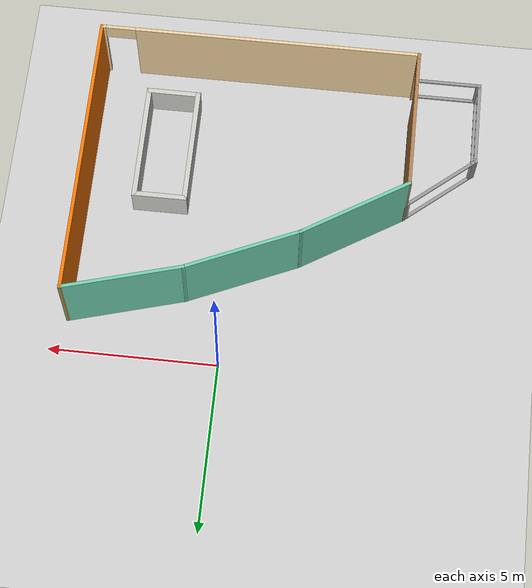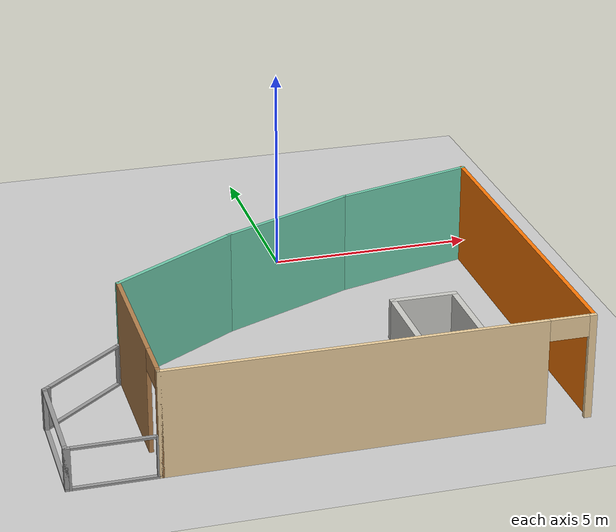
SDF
<sdf version="1.6">
 <world name="default">
  <light name="sun" type="directional">
   <pose>0 0 10 0 -0 0</pose>
   <diffuse>0.8 0.8 0.8 1</diffuse>
   <specular>0.2 0.2 0.2 1</specular>
   <attenuation>
    <range>1000</range>
    <constant>0.9</constant>
    <linear>0.01</linear>
    <quadratic>0.001</quadratic>
   </attenuation>
   <direction>-0.5 0.1 -0.9</direction>
  </light>
  <model name="ground_plane">
   <static>1</static>
   <link name="link">
    <collision name="collision">
     <geometry><plane><normal>0 0 1</normal><size>100 100</size></plane></geometry>
     <surface>
      <contact><collide_bitmask>65535</collide_bitmask></contact>
      <friction><ode><mu>100</mu><mu2>50</mu2></ode></friction>
     </surface>
    </collision>
    <visual name="visual">
     <cast_shadows>0</cast_shadows>
     <geometry><plane><normal>0 0 1</normal><size>100 100</size></plane></geometry>
     <material>
      <script><uri>file://media/materials/scripts/gazebo.material</uri><name>Gazebo/Grey</name></script>
     </material>
    </visual>
   </link>
  </model>
  <gravity>0 0 -9.8</gravity>
  <magnetic_field>6e-06 2.3e-05 -4.2e-05</magnetic_field>
  <atmosphere type="adiabatic"/>
  <physics name="default_physics" default="0" type="ode">
   <max_step_size>0.001</max_step_size>
   <real_time_factor>1</real_time_factor>
   <real_time_update_rate>1000</real_time_update_rate>
  </physics>
  <scene><ambient>0.4 0.4 0.4 1</ambient><background>0.7 0.7 0.7 1</background><shadows>1</shadows></scene>
  <spherical_coordinates>
   <surface_model>EARTH_WGS84</surface_model>
   <latitude_deg>0</latitude_deg>
   <longitude_deg>0</longitude_deg>
   <elevation>0</elevation>
   <heading_deg>0</heading_deg>
  </spherical_coordinates>
  <model name="enso_simplified">
   <pose>-1.23432 -5.23909 0 0 -0 0</pose>
   <link name="Wall_11">
    <collision name="Wall_11_Collision">
     <geometry><box><size>3.65 0.15 1</size></box></geometry>
     <pose>0 0 0.5 0 -0 0</pose>
    </collision>
    <visual name="Wall_11_Visual">
     <pose>0 0 0.5 0 -0 0</pose>
     <geometry><box><size>3.65 0.15 1</size></box></geometry>
     <material>
      <script><uri>file://media/materials/scripts/gazebo.material</uri><name>Gazebo/CeilingTiled</name></script>
      <ambient>1 1 1 1</ambient>
     </material>
     <meta><layer>0</layer></meta>
    </visual>
    <pose>2.76431 -1.31091 0 0 0 -1.5708</pose>
   </link>
   <link name="Wall_12">
    <collision name="Wall_12_Collision">
     <geometry><box><size>1.65 0.15 1</size></box></geometry>
     <pose>0 0 0.5 0 -0 0</pose>
    </collision>
    <visual name="Wall_12_Visual">
     <pose>0 0 0.5 0 -0 0</pose>
     <geometry><box><size>1.65 0.15 1</size></box></geometry>
     <material>
      <script><uri>file://media/materials/scripts/gazebo.material</uri><name>Gazebo/CeilingTiled</name></script>
      <ambient>1 1 1 1</ambient>
     </material>
     <meta><layer>0</layer></meta>
    </visual>
    <pose>3.51431 -3.06091 0 0 -0 0</pose>
   </link>
   <link name="Wall_13">
    <collision name="Wall_13_Collision">
     <geometry><box><size>3.65 0.15 1</size></box></geometry>
     <pose>0 0 0.5 0 -0 0</pose>
    </collision>
    <visual name="Wall_13_Visual">
     <pose>0 0 0.5 0 -0 0</pose>
     <geometry><box><size>3.65 0.15 1</size></box></geometry>
     <material>
      <script><uri>file://media/materials/scripts/gazebo.material</uri><name>Gazebo/CeilingTiled</name></script>
      <ambient>1 1 1 1</ambient>
     </material>
     <meta><layer>0</layer></meta>
    </visual>
    <pose>4.26431 -1.31091 0 0 -0 1.5708</pose>
   </link>
   <link name="Wall_14">
    <collision name="Wall_14_Collision">
     <geometry><box><size>1.65 0.15 1</size></box></geometry>
     <pose>0 0 0.5 0 -0 0</pose>
    </collision>
    <visual name="Wall_14_Visual">
     <pose>0 0 0.5 0 -0 0</pose>
     <geometry><box><size>1.65 0.15 1</size></box></geometry>
     <material>
      <script><uri>file://media/materials/scripts/gazebo.material</uri><name>Gazebo/CeilingTiled</name></script>
      <ambient>1 1 1 1</ambient>
     </material>
     <meta><layer>0</layer></meta>
    </visual>
    <pose>3.51431 0.439094 0 0 -0 3.14159</pose>
   </link>
   <link name="Wall_16">
    <pose>-3.76568 -2.12591 0 0 0 -1.5708</pose>
    <visual name="Wall_16_Visual_0">
     <pose>-0.545 0 1.25 0 -0 0</pose>
     <geometry><box><size>3.28 0.1 2.5</size></box></geometry>
     <material>
      <script><uri>file://media/materials/scripts/gazebo.material</uri><name>Gazebo/Wood</name></script>
      <ambient>1 1 1 1</ambient>
     </material>
     <meta><layer>0</layer></meta>
    </visual>
    <collision name="Wall_16_Collision_0">
     <geometry><box><size>3.28 0.1 2.5</size></box></geometry>
     <pose>-0.545 0 1.25 0 -0 0</pose>
    </collision>
    <visual name="Wall_16_Visual_1">
     <pose>2.09 0 1.25 0 -0 0</pose>
     <geometry><box><size>0.19 0.1 2.5</size></box></geometry>
     <material>
      <script><uri>file://media/materials/scripts/gazebo.material</uri><name>Gazebo/Wood</name></script>
      <ambient>1 1 1 1</ambient>
     </material>
     <meta><layer>0</layer></meta>
    </visual>
    <collision name="Wall_16_Collision_1">
     <geometry><box><size>0.19 0.1 2.5</size></box></geometry>
     <pose>2.09 0 1.25 0 -0 0</pose>
    </collision>
    <visual name="Wall_16_Visual_2">
     <pose>1.545 0 2.25 0 -0 0</pose>
     <geometry><box><size>0.9 0.1 0.5</size></box></geometry>
     <material>
      <script><uri>file://media/materials/scripts/gazebo.material</uri><name>Gazebo/Wood</name></script>
      <ambient>1 1 1 1</ambient>
     </material>
     <meta><layer>0</layer></meta>
    </visual>
    <collision name="Wall_16_Collision_2">
     <geometry><box><size>0.9 0.1 0.5</size></box></geometry>
     <pose>1.545 0 2.25 0 -0 0</pose>
    </collision>
   </link>
   <link name="Wall_2">
    <collision name="Wall_2_Collision">
     <geometry><box><size>3.59445 0.1 2.5</size></box></geometry>
     <pose>0 0 1.25 0 -0 0</pose>
    </collision>
    <visual name="Wall_2_Visual">
     <pose>0 0 1.25 0 -0 0</pose>
     <geometry><box><size>3.59445 0.1 2.5</size></box></geometry>
     <material>
      <script><uri>file://media/materials/scripts/gazebo.material</uri><name>Gazebo/Grey</name></script>
      <ambient>0.435294 0.796078 0.67451 1</ambient>
     </material>
     <meta><layer>0</layer></meta>
    </visual>
    <pose>4.08432 3.76909 0 0 0 -2.86329</pose>
   </link>
   <link name="Wall_3">
    <collision name="Wall_3_Collision">
     <geometry><box><size>3.60498 0.1 2.5</size></box></geometry>
     <pose>0 0 1.25 0 -0 0</pose>
    </collision>
    <visual name="Wall_3_Visual">
     <pose>0 0 1.25 0 -0 0</pose>
     <geometry><box><size>3.60498 0.1 2.5</size></box></geometry>
     <material>
      <script><uri>file://media/materials/scripts/gazebo.material</uri><name>Gazebo/Grey</name></script>
      <ambient>0.435294 0.796078 0.67451 1</ambient>
     </material>
     <meta><layer>0</layer></meta>
    </visual>
    <pose>0.804315 2.57409 0 0 0 -2.72134</pose>
   </link>
   <link name="Wall_4">
    <collision name="Wall_4_Collision">
     <geometry><box><size>3.59906 0.1 2.5</size></box></geometry>
     <pose>0 0 1.25 0 -0 0</pose>
    </collision>
    <visual name="Wall_4_Visual">
     <pose>0 0 1.25 0 -0 0</pose>
     <geometry><box><size>3.59906 0.1 2.5</size></box></geometry>
     <material>
      <script><uri>file://media/materials/scripts/gazebo.material</uri><name>Gazebo/Grey</name></script>
      <ambient>0.435294 0.796078 0.67451 1</ambient>
     </material>
     <meta><layer>0</layer></meta>
    </visual>
    <pose>-2.28069 0.934094 0 0 0 -2.58451</pose>
   </link>
   <link name="Wall_5">
    <pose>-4.76068 -0.825906 0 0 0 -2.4434</pose>
    <visual name="Wall_5_Visual_0">
     <pose>-1.25163 0 0.5 0 -0 0</pose>
     <geometry><box><size>0.194631 0.1 1</size></box></geometry>
     <material>
      <script><uri>file://media/materials/scripts/gazebo.material</uri><name>Gazebo/Grey</name></script>
      <ambient>1 1 1 1</ambient>
     </material>
     <meta><layer>0</layer></meta>
    </visual>
    <collision name="Wall_5_Collision_0">
     <geometry><box><size>0.194631 0.1 1</size></box></geometry>
     <pose>-1.25163 0 0.5 0 -0 0</pose>
    </collision>
    <visual name="Wall_5_Visual_1">
     <pose>0.097315 0 0.025 0 -0 0</pose>
     <geometry><box><size>2.50325 0.1 0.05</size></box></geometry>
     <material>
      <script><uri>file://media/materials/scripts/gazebo.material</uri><name>Gazebo/Grey</name></script>
      <ambient>1 1 1 1</ambient>
     </material>
     <meta><layer>0</layer></meta>
    </visual>
    <collision name="Wall_5_Collision_1">
     <geometry><box><size>2.50325 0.1 0.05</size></box></geometry>
     <pose>0.097315 0 0.025 0 -0 0</pose>
    </collision>
    <visual name="Wall_5_Visual_2">
     <pose>1.24731 0 0.525 0 -0 0</pose>
     <geometry><box><size>0.203253 0.1 0.95</size></box></geometry>
     <material>
      <script><uri>file://media/materials/scripts/gazebo.material</uri><name>Gazebo/Grey</name></script>
      <ambient>1 1 1 1</ambient>
     </material>
     <meta><layer>0</layer></meta>
    </visual>
    <collision name="Wall_5_Collision_2">
     <geometry><box><size>0.203253 0.1 0.95</size></box></geometry>
     <pose>1.24731 0 0.525 0 -0 0</pose>
    </collision>
    <visual name="Wall_5_Visual_3">
     <pose>-0.004311 0 0.975 0 -0 0</pose>
     <geometry><box><size>2.3 0.1 0.05</size></box></geometry>
     <material>
      <script><uri>file://media/materials/scripts/gazebo.material</uri><name>Gazebo/Grey</name></script>
      <ambient>1 1 1 1</ambient>
     </material>
     <meta><layer>0</layer></meta>
    </visual>
    <collision name="Wall_5_Collision_3">
     <geometry><box><size>2.3 0.1 0.05</size></box></geometry>
     <pose>-0.004311 0 0.975 0 -0 0</pose>
    </collision>
   </link>
   <link name="Wall_6">
    <pose>-5.75568 -2.96091 0 0 0 -1.5708</pose>
    <visual name="Wall_6_Visual_0">
     <pose>-1.275 0 0.5 0 -0 0</pose>
     <geometry><box><size>0.15 0.1 1</size></box></geometry>
     <material>
      <script><uri>file://media/materials/scripts/gazebo.material</uri><name>Gazebo/Grey</name></script>
      <ambient>1 1 1 1</ambient>
     </material>
     <meta><layer>0</layer></meta>
    </visual>
    <collision name="Wall_6_Collision_0">
     <geometry><box><size>0.15 0.1 1</size></box></geometry>
     <pose>-1.275 0 0.5 0 -0 0</pose>
    </collision>
    <visual name="Wall_6_Visual_1">
     <pose>0.075 0 0.025 0 -0 0</pose>
     <geometry><box><size>2.55 0.1 0.05</size></box></geometry>
     <material>
      <script><uri>file://media/materials/scripts/gazebo.material</uri><name>Gazebo/Grey</name></script>
      <ambient>1 1 1 1</ambient>
     </material>
     <meta><layer>0</layer></meta>
    </visual>
    <collision name="Wall_6_Collision_1">
     <geometry><box><size>2.55 0.1 0.05</size></box></geometry>
     <pose>0.075 0 0.025 0 -0 0</pose>
    </collision>
    <visual name="Wall_6_Visual_2">
     <pose>1.275 0 0.525 0 -0 0</pose>
     <geometry><box><size>0.15 0.1 0.95</size></box></geometry>
     <material>
      <script><uri>file://media/materials/scripts/gazebo.material</uri><name>Gazebo/Grey</name></script>
      <ambient>1 1 1 1</ambient>
     </material>
     <meta><layer>0</layer></meta>
    </visual>
    <collision name="Wall_6_Collision_2">
     <geometry><box><size>0.15 0.1 0.95</size></box></geometry>
     <pose>1.275 0 0.525 0 -0 0</pose>
    </collision>
    <visual name="Wall_6_Visual_3">
     <pose>-0 0 0.975 0 -0 0</pose>
     <geometry><box><size>2.4 0.1 0.05</size></box></geometry>
     <material>
      <script><uri>file://media/materials/scripts/gazebo.material</uri><name>Gazebo/Grey</name></script>
      <ambient>1 1 1 1</ambient>
     </material>
     <meta><layer>0</layer></meta>
    </visual>
    <collision name="Wall_6_Collision_3">
     <geometry><box><size>2.4 0.1 0.05</size></box></geometry>
     <pose>-0 0 0.975 0 -0 0</pose>
    </collision>
   </link>
   <link name="Wall_7">
    <pose>-4.76068 -4.26091 0 0 -0 0</pose>
    <visual name="Wall_7_Visual_0">
     <pose>-0.97 0 0.5 0 -0 0</pose>
     <geometry><box><size>0.15 0.1 1</size></box></geometry>
     <material>
      <script><uri>file://media/materials/scripts/gazebo.material</uri><name>Gazebo/Grey</name></script>
      <ambient>1 1 1 1</ambient>
     </material>
     <meta><layer>0</layer></meta>
    </visual>
    <collision name="Wall_7_Collision_0">
     <geometry><box><size>0.15 0.1 1</size></box></geometry>
     <pose>-0.97 0 0.5 0 -0 0</pose>
    </collision>
    <visual name="Wall_7_Visual_1">
     <pose>0.075 0 0.025 0 -0 0</pose>
     <geometry><box><size>1.94 0.1 0.05</size></box></geometry>
     <material>
      <script><uri>file://media/materials/scripts/gazebo.material</uri><name>Gazebo/Grey</name></script>
      <ambient>1 1 1 1</ambient>
     </material>
     <meta><layer>0</layer></meta>
    </visual>
    <collision name="Wall_7_Collision_1">
     <geometry><box><size>1.94 0.1 0.05</size></box></geometry>
     <pose>0.075 0 0.025 0 -0 0</pose>
    </collision>
    <visual name="Wall_7_Visual_2">
     <pose>0.975 0 0.525 0 -0 0</pose>
     <geometry><box><size>0.14 0.1 0.95</size></box></geometry>
     <material>
      <script><uri>file://media/materials/scripts/gazebo.material</uri><name>Gazebo/Grey</name></script>
      <ambient>1 1 1 1</ambient>
     </material>
     <meta><layer>0</layer></meta>
    </visual>
    <collision name="Wall_7_Collision_2">
     <geometry><box><size>0.14 0.1 0.95</size></box></geometry>
     <pose>0.975 0 0.525 0 -0 0</pose>
    </collision>
    <visual name="Wall_7_Visual_3">
     <pose>0.005 0 0.975 0 -0 0</pose>
     <geometry><box><size>1.8 0.1 0.05</size></box></geometry>
     <material>
      <script><uri>file://media/materials/scripts/gazebo.material</uri><name>Gazebo/Grey</name></script>
      <ambient>1 1 1 1</ambient>
     </material>
     <meta><layer>0</layer></meta>
    </visual>
    <collision name="Wall_7_Collision_3">
     <geometry><box><size>1.8 0.1 0.05</size></box></geometry>
     <pose>0.005 0 0.975 0 -0 0</pose>
    </collision>
   </link>
   <link name="Wall_8">
    <pose>0.999315 -4.26091 0 0 -0 0</pose>
    <visual name="Wall_8_Visual_0">
     <pose>-0.535 0 1.25 0 -0 0</pose>
     <geometry><box><size>8.56 0.1 2.5</size></box></geometry>
     <material>
      <script><uri>file://media/materials/scripts/gazebo.material</uri><name>Gazebo/Grey</name></script>
      <ambient>0.921569 0.807843 0.615686 1</ambient>
     </material>
     <meta><layer>0</layer></meta>
    </visual>
    <collision name="Wall_8_Collision_0">
     <geometry><box><size>8.56 0.1 2.5</size></box></geometry>
     <pose>-0.535 0 1.25 0 -0 0</pose>
    </collision>
    <visual name="Wall_8_Visual_1">
     <pose>4.73 0 1.25 0 -0 0</pose>
     <geometry><box><size>0.17 0.1 2.5</size></box></geometry>
     <material>
      <script><uri>file://media/materials/scripts/gazebo.material</uri><name>Gazebo/Grey</name></script>
      <ambient>0.921569 0.807843 0.615686 1</ambient>
     </material>
     <meta><layer>0</layer></meta>
    </visual>
    <collision name="Wall_8_Collision_1">
     <geometry><box><size>0.17 0.1 2.5</size></box></geometry>
     <pose>4.73 0 1.25 0 -0 0</pose>
    </collision>
    <visual name="Wall_8_Visual_2">
     <pose>4.195 0 2.25 0 -0 0</pose>
     <geometry><box><size>0.9 0.1 0.5</size></box></geometry>
     <material>
      <script><uri>file://media/materials/scripts/gazebo.material</uri><name>Gazebo/Grey</name></script>
      <ambient>0.921569 0.807843 0.615686 1</ambient>
     </material>
     <meta><layer>0</layer></meta>
    </visual>
    <collision name="Wall_8_Collision_2">
     <geometry><box><size>0.9 0.1 0.5</size></box></geometry>
     <pose>4.195 0 2.25 0 -0 0</pose>
    </collision>
   </link>
   <link name="Wall_9">
    <collision name="Wall_9_Collision">
     <geometry><box><size>8.61 0.1 2.5</size></box></geometry>
     <pose>0 0 1.25 0 -0 0</pose>
    </collision>
    <visual name="Wall_9_Visual">
     <pose>0 0 1.25 0 -0 0</pose>
     <geometry><box><size>8.61 0.1 2.5</size></box></geometry>
     <material>
      <script><uri>file://media/materials/scripts/gazebo.material</uri><name>Gazebo/Grey</name></script>
      <ambient>0.996078 0.47451 0.0196078 1</ambient>
     </material>
     <meta><layer>0</layer></meta>
    </visual>
    <pose>5.76431 -0.005906 0 0 -0 1.5708</pose>
   </link>
   <static>1</static>
  </model>
 </world>
</sdf>
